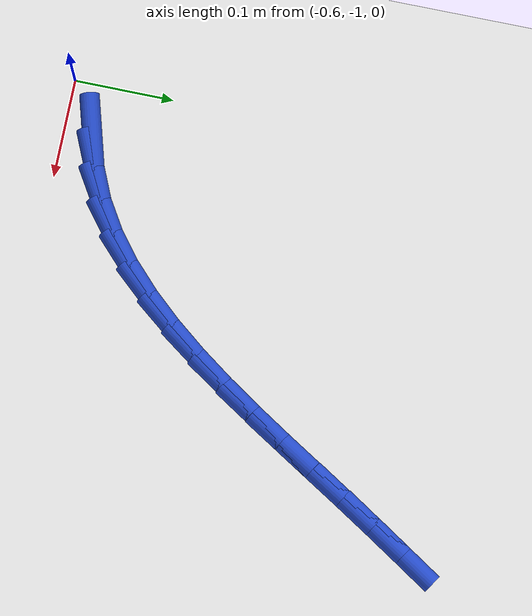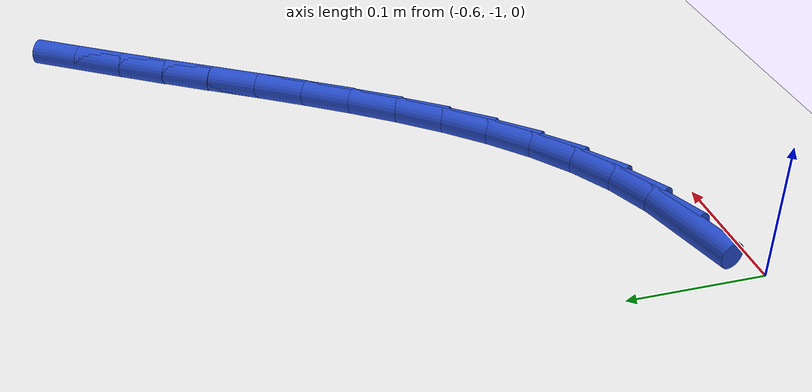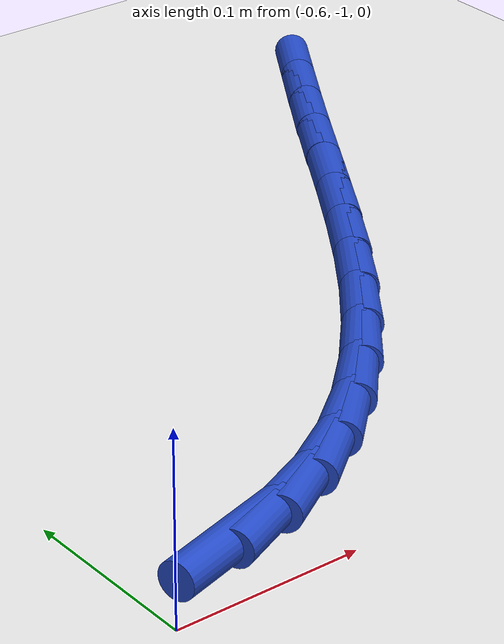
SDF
<sdf version="1.6">
 <world name="default">
  <model name="ground_plane">
   <static>1</static>
   <link name="link">
    <collision name="collision">
     <geometry><plane><normal>0 0 1</normal><size>100 100</size></plane></geometry>
     <surface><friction><ode><mu>100</mu><mu2>50</mu2></ode></friction></surface>
    </collision>
    <visual name="visual">
     <cast_shadows>0</cast_shadows>
     <geometry><plane><normal>0 0 1</normal><size>100 100</size></plane></geometry>
     <material>
      <script><uri>file://media/materials/scripts/gazebo.material</uri><name>Gazebo/WhiteGlow</name></script>
     </material>
    </visual>
   </link>
  </model>
  <model name="line">
   <link name="link_149">
    <pose>-0.5481159615862456 -0.9708902416324678 0.01 0 1.57 0.27872734426874385</pose>
    <collision name="collision">
     <geometry><cylinder><radius>0.01</radius><length>0.08</length></cylinder></geometry>
    </collision>
    <visual name="visual">
     <material>
      <script><name>Gazebo/Blue</name><uri>file://media/materials/scripts/gazebo.material</uri></script>
     </material>
     <geometry><cylinder><radius>0.01</radius><length>0.08</length></cylinder></geometry>
    </visual>
   </link>
   <link name="link_150">
    <pose>-0.5145968078865872 -0.9612978327744156 0.01 0 1.57 0.4153716893491015</pose>
    <collision name="collision">
     <geometry><cylinder><radius>0.01</radius><length>0.08</length></cylinder></geometry>
    </collision>
    <visual name="visual">
     <material>
      <script><name>Gazebo/Blue</name><uri>file://media/materials/scripts/gazebo.material</uri></script>
     </material>
     <geometry><cylinder><radius>0.01</radius><length>0.08</length></cylinder></geometry>
    </visual>
   </link>
   <link name="link_151">
    <pose>-0.48306538540858057 -0.9473914463990439 0.01 0 1.57 0.5501491001780912</pose>
    <collision name="collision">
     <geometry><cylinder><radius>0.01</radius><length>0.08</length></cylinder></geometry>
    </collision>
    <visual name="visual">
     <material>
      <script><name>Gazebo/Blue</name><uri>file://media/materials/scripts/gazebo.material</uri></script>
     </material>
     <geometry><cylinder><radius>0.01</radius><length>0.08</length></cylinder></geometry>
    </visual>
   </link>
   <link name="link_152">
    <pose>-0.4534816468478527 -0.9292474324995381 0.01 0 1.57 0.6664865368772968</pose>
    <collision name="collision">
     <geometry><cylinder><radius>0.01</radius><length>0.08</length></cylinder></geometry>
    </collision>
    <visual name="visual">
     <material>
      <script><name>Gazebo/Blue</name><uri>file://media/materials/scripts/gazebo.material</uri></script>
     </material>
     <geometry><cylinder><radius>0.01</radius><length>0.08</length></cylinder></geometry>
    </visual>
   </link>
   <link name="link_153">
    <pose>-0.4256495555696082 -0.9073560655145081 0.01 0 1.57 0.7634007361952383</pose>
    <collision name="collision">
     <geometry><cylinder><radius>0.01</radius><length>0.08</length></cylinder></geometry>
    </collision>
    <visual name="visual">
     <material>
      <script><name>Gazebo/Blue</name><uri>file://media/materials/scripts/gazebo.material</uri></script>
     </material>
     <geometry><cylinder><radius>0.01</radius><length>0.08</length></cylinder></geometry>
    </visual>
   </link>
   <link name="link_154">
    <pose>-0.39937216338375975 -0.8822100387340108 0.01 0 1.57 0.8419059101816002</pose>
    <collision name="collision">
     <geometry><cylinder><radius>0.01</radius><length>0.08</length></cylinder></geometry>
    </collision>
    <visual name="visual">
     <material>
      <script><name>Gazebo/Blue</name><uri>file://media/materials/scripts/gazebo.material</uri></script>
     </material>
     <geometry><cylinder><radius>0.01</radius><length>0.08</length></cylinder></geometry>
    </visual>
   </link>
   <link name="link_155">
    <pose>-0.37445252210022184 -0.8543020454481063 0.01 0 1.57 0.9038417432099499</pose>
    <collision name="collision">
     <geometry><cylinder><radius>0.01</radius><length>0.08</length></cylinder></geometry>
    </collision>
    <visual name="visual">
     <material>
      <script><name>Gazebo/Blue</name><uri>file://media/materials/scripts/gazebo.material</uri></script>
     </material>
     <geometry><cylinder><radius>0.01</radius><length>0.08</length></cylinder></geometry>
    </visual>
   </link>
   <link name="link_156">
    <pose>-0.35069368352890734 -0.824124778946853 0.01 0 1.57 0.9511520315326745</pose>
    <collision name="collision">
     <geometry><cylinder><radius>0.01</radius><length>0.08</length></cylinder></geometry>
    </collision>
    <visual name="visual">
     <material>
      <script><name>Gazebo/Blue</name><uri>file://media/materials/scripts/gazebo.material</uri></script>
     </material>
     <geometry><cylinder><radius>0.01</radius><length>0.08</length></cylinder></geometry>
    </visual>
   </link>
   <link name="link_157">
    <pose>-0.3278986994797297 -0.7921709325203093 0.01 0 1.57 0.9855149708142029</pose>
    <collision name="collision">
     <geometry><cylinder><radius>0.01</radius><length>0.08</length></cylinder></geometry>
    </collision>
    <visual name="visual">
     <material>
      <script><name>Gazebo/Blue</name><uri>file://media/materials/scripts/gazebo.material</uri></script>
     </material>
     <geometry><cylinder><radius>0.01</radius><length>0.08</length></cylinder></geometry>
    </visual>
   </link>
   <link name="link_158">
    <pose>-0.3058706217626022 -0.7589331994585341 0.01 0 1.57 1.0081911398608518</pose>
    <collision name="collision">
     <geometry><cylinder><radius>0.01</radius><length>0.08</length></cylinder></geometry>
    </collision>
    <visual name="visual">
     <material>
      <script><name>Gazebo/Blue</name><uri>file://media/materials/scripts/gazebo.material</uri></script>
     </material>
     <geometry><cylinder><radius>0.01</radius><length>0.08</length></cylinder></geometry>
    </visual>
   </link>
   <link name="link_159">
    <pose>-0.28441250218743797 -0.7249042730515854 0.01 0 1.57 1.0199755535001043</pose>
    <collision name="collision">
     <geometry><cylinder><radius>0.01</radius><length>0.08</length></cylinder></geometry>
    </collision>
    <visual name="visual">
     <material>
      <script><name>Gazebo/Blue</name><uri>file://media/materials/scripts/gazebo.material</uri></script>
     </material>
     <geometry><cylinder><radius>0.01</radius><length>0.08</length></cylinder></geometry>
    </visual>
   </link>
   <link name="link_160">
    <pose>-0.2633273925641511 -0.690576846589523 0.01 0 1.57 1.0211842785735548</pose>
    <collision name="collision">
     <geometry><cylinder><radius>0.01</radius><length>0.08</length></cylinder></geometry>
    </collision>
    <visual name="visual">
     <material>
      <script><name>Gazebo/Blue</name><uri>file://media/materials/scripts/gazebo.material</uri></script>
     </material>
     <geometry><cylinder><radius>0.01</radius><length>0.08</length></cylinder></geometry>
    </visual>
   </link>
   <link name="link_161">
    <pose>-0.24241834470265472 -0.6564436133624053 0.01 0 1.57 1.0122568699492733</pose>
    <collision name="collision">
     <geometry><cylinder><radius>0.01</radius><length>0.08</length></cylinder></geometry>
    </collision>
    <visual name="visual">
     <material>
      <script><name>Gazebo/Blue</name><uri>file://media/materials/scripts/gazebo.material</uri></script>
     </material>
     <geometry><cylinder><radius>0.01</radius><length>0.08</length></cylinder></geometry>
    </visual>
   </link>
   <link name="link_162">
    <pose>-0.22150191039477793 -0.6229728608291027 0.01 0 1.57 1.0022374794220605</pose>
    <collision name="collision">
     <geometry><cylinder><radius>0.01</radius><length>0.08</length></cylinder></geometry>
    </collision>
    <visual name="visual">
     <material>
      <script><name>Gazebo/Blue</name><uri>file://media/materials/scripts/gazebo.material</uri></script>
     </material>
     <geometry><cylinder><radius>0.01</radius><length>0.08</length></cylinder></geometry>
    </visual>
   </link>
   <link name="link_163">
    <pose>-0.20060068791107416 -0.5902603770178887 0.01 0 1.57 0.998677699061125</pose>
    <collision name="collision">
     <geometry><cylinder><radius>0.01</radius><length>0.08</length></cylinder></geometry>
    </collision>
    <visual name="visual">
     <material>
      <script><name>Gazebo/Blue</name><uri>file://media/materials/scripts/gazebo.material</uri></script>
     </material>
     <geometry><cylinder><radius>0.01</radius><length>0.08</length></cylinder></geometry>
    </visual>
   </link>
  </model>
 </world>
</sdf>
